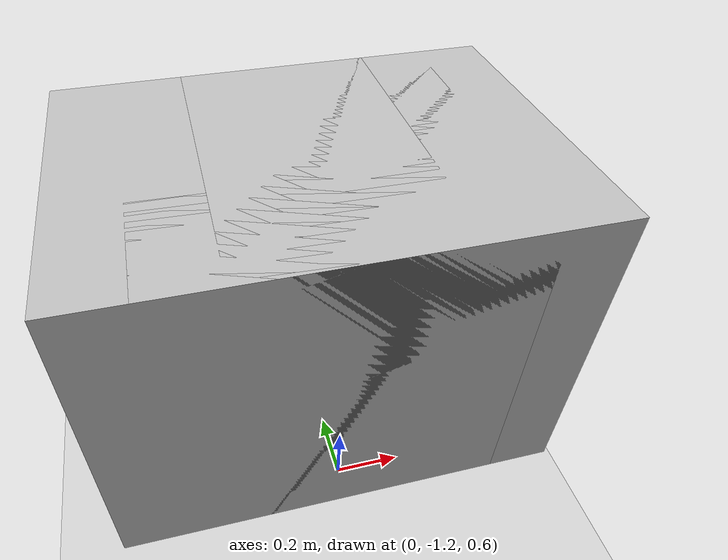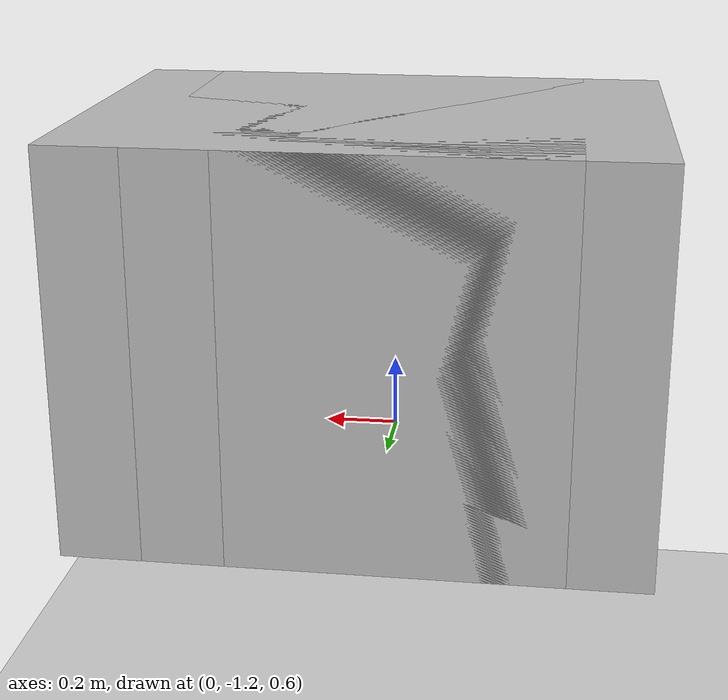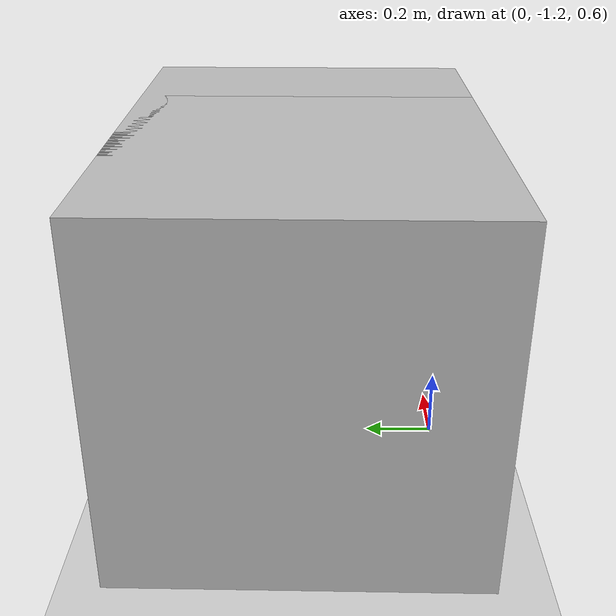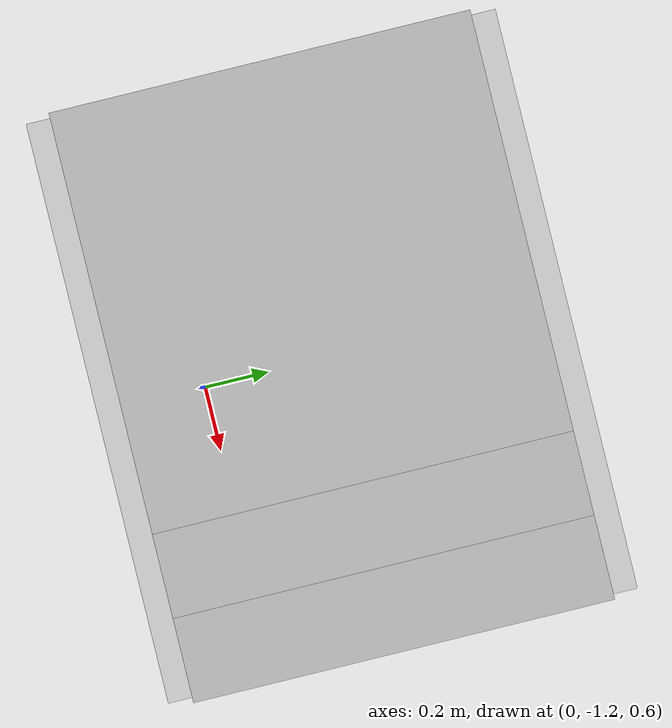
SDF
<sdf version="1.5">
 <world name="default">
  <include><uri>model://ground_plane</uri></include>
  <include><uri>model://sun</uri></include>
  <include><uri>model://red_cube</uri><pose>-0.2 -0.8 1.1 0 0 0</pose></include>
  <include><uri>model://blue_cube</uri><pose>0.0 -0.8 1.1 0 0 0</pose></include>
  <include><uri>model://green_cube</uri><pose>0.2 -0.8 1.1 0 0 0</pose></include>
  <include><uri>model://tr_box</uri><pose>.154 -0.55 1.013225 0 0 1.57</pose></include>
 </world>
</sdf>

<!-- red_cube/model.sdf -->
<sdf version="1.4">
  <model name="red_cube">
    <pose>0 0 0.0 0 0 0</pose>
    <static>false</static>
    <link name="cube_link">
      <inertial>
        <mass>0.001</mass>
        <inertia> <!-- inertias are tricky to compute -->
          <!-- http://gazebosim.org/tutorials?tut=inertia&cat=build_robot -->
          <ixx>0.000083</ixx>       <!-- for a box: ixx = 0.083 * mass * (y*y + z*z) -->
          <ixy>0.0</ixy>         <!-- for a box: ixy = 0 -->
          <ixz>0.0</ixz>         <!-- for a box: ixz = 0 -->
          <iyy>0.000083</iyy>       <!-- for a box: iyy = 0.083 * mass * (x*x + z*z) -->
          <iyz>0.0</iyz>         <!-- for a box: iyz = 0 -->
          <izz>0.000083</izz>       <!-- for a box: izz = 0.083 * mass * (x*x + y*y) -->
        </inertia>
      </inertial>
      <collision name="collision">
        <geometry>
          <box>
            <size>1 1 1</size>
          </box>
        </geometry>
      </collision>
      <visual name="visual">
        <geometry>
          <box>
            <size>1 1 1</size>
          </box>
        </geometry>
      </visual>
    </link>
    <gazebo reference="cube_link">
      <material>Gazebo/Red</material>
    </gazebo>
  </model>
</sdf>

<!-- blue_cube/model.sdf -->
<sdf version="1.4">
  <model name="blue_cube">
    <pose>0 0 0.0 0 0 0</pose>
    <static>false</static>
    <link name="cube_link">
      <inertial>
        <mass>0.001</mass>
        <inertia> <!-- inertias are tricky to compute -->
          <!-- http://gazebosim.org/tutorials?tut=inertia&cat=build_robot -->
          <ixx>0.000083</ixx>       <!-- for a box: ixx = 0.083 * mass * (y*y + z*z) -->
          <ixy>0.0</ixy>         <!-- for a box: ixy = 0 -->
          <ixz>0.0</ixz>         <!-- for a box: ixz = 0 -->
          <iyy>0.000083</iyy>       <!-- for a box: iyy = 0.083 * mass * (x*x + z*z) -->
          <iyz>0.0</iyz>         <!-- for a box: iyz = 0 -->
          <izz>0.000083</izz>       <!-- for a box: izz = 0.083 * mass * (x*x + y*y) -->
        </inertia>
      </inertial>
      <collision name="collision">
        <geometry>
          <box>
            <size>1 1 1</size>
          </box>
        </geometry>
      </collision>
      <visual name="visual">
        <geometry>
          <box>
            <size>1 1 1</size>
          </box>
        </geometry>
      </visual>
    </link>
    <gazebo reference="cube_link">
      <material>Gazebo/Blue</material>
    </gazebo>
  </model>
</sdf>

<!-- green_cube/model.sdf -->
<sdf version="1.4">
  <model name="green_cube">
    <pose>0 0 0.0 0 0 0</pose>
    <static>false</static>
    <link name="cube_link">
      <inertial>
        <mass>0.001</mass>
        <inertia> <!-- inertias are tricky to compute -->
          <!-- http://gazebosim.org/tutorials?tut=inertia&cat=build_robot -->
          <ixx>0.000083</ixx>       <!-- for a box: ixx = 0.083 * mass * (y*y + z*z) -->
          <ixy>0.0</ixy>         <!-- for a box: ixy = 0 -->
          <ixz>0.0</ixz>         <!-- for a box: ixz = 0 -->
          <iyy>0.000083</iyy>       <!-- for a box: iyy = 0.083 * mass * (x*x + z*z) -->
          <iyz>0.0</iyz>         <!-- for a box: iyz = 0 -->
          <izz>0.000083</izz>       <!-- for a box: izz = 0.083 * mass * (x*x + y*y) -->
        </inertia>
      </inertial>
      <collision name="collision">
        <geometry>
          <box>
            <size>1 1 1</size>
          </box>
        </geometry>
      </collision>
      <visual name="visual">
        <geometry>
          <box>
            <size>1 1 1</size>
          </box>
        </geometry>
      </visual>
    </link>
    <gazebo reference="cube_link">
      <material>Gazebo/Green</material>
    </gazebo>
  </model>
</sdf>

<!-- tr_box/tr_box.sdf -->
<sdf version="1.5">
  <model name="tr_box">
    <pose>0 0 0 0 0 0</pose>
    <static>false</static>
    <link name="link">
      <inertial>
        <mass>1.0</mass>
        <inertia>
          <ixx>0.083</ixx>
          <ixy>0.0</ixy>
          <ixz>0.0</ixz>
          <iyy>0.083</iyy>
          <iyz>0.0</iyz>
          <izz>0.083</izz>
        </inertia>
      </inertial>
      <collision name="collision">
        <geometry>
          <mesh>
            <uri>model://tr_box/tr_box.stl</uri>
            <scale>0.0393701 0.0393701 0.0393701</scale>
          </mesh>
	</geometry>
        <surface>
          <friction>
            <ode>
              <mu>1.0</mu>
              <mu2>1.0</mu2>
            </ode>
          </friction>
          <contact>
            <ode>
              <kp>10000000.0</kp>
              <kd>1.0</kd>
              <min_depth>0.001</min_depth>
              <max_vel>0.1</max_vel>
            </ode>
          </contact>
        </surface>
      </collision>
      <visual name="visual">
        <material>
          <script>
            <uri>file://media/materials/scripts/gazebo.material</uri>
            <name>Gazebo/Grey</name>
          </script>
        </material>
        <geometry>
          <mesh>
            <uri>model://tr_box/tr_box.stl</uri>
            <scale>0.0393701 0.0393701 0.0393701</scale>
          </mesh>
        </geometry>
      </visual>
    </link>
  </model>
</sdf>
